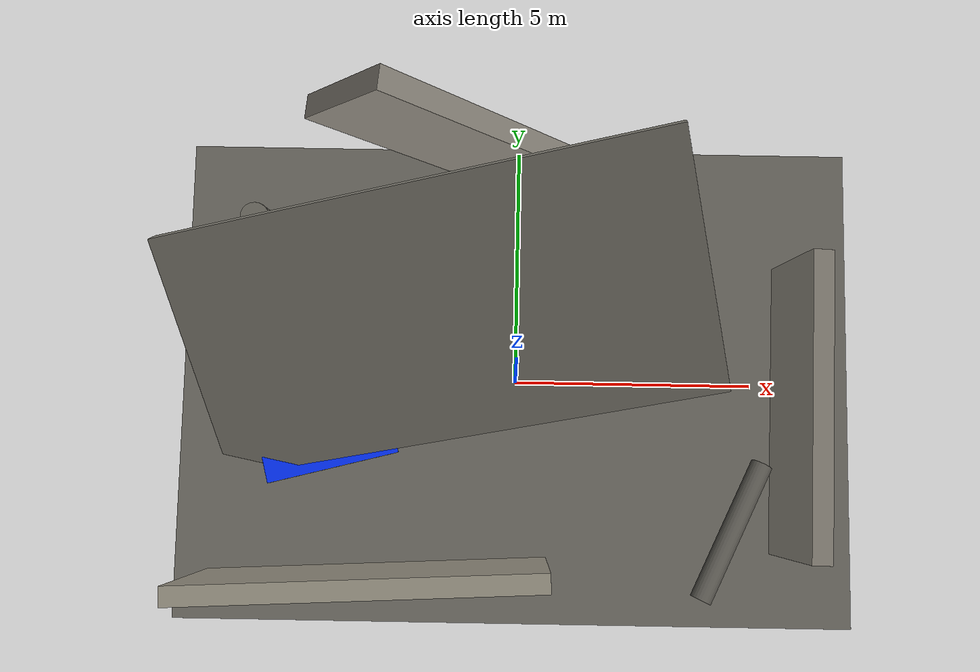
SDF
<sdf version='1.9'>
  <model name='disaster_collapsed_building'>
    <static>true</static>

    <link name='foundation_slab'>
      <pose>0 0 0.12 0 0 0</pose>
      <collision name='collision'>
        <geometry><box><size>14 10 0.24</size></box></geometry>
      </collision>
      <visual name='visual'>
        <geometry><box><size>14 10 0.24</size></box></geometry>
        <material>
          <ambient>0.23 0.23 0.22 1</ambient>
          <diffuse>0.43 0.42 0.39 1</diffuse>
        </material>
      </visual>
    </link>

    <link name='tilted_roof_slab'>
      <pose>-1.5 1.2 1.85 0.42 -0.18 0.18</pose>
      <collision name='collision'>
        <geometry><box><size>10.5 5.2 0.35</size></box></geometry>
      </collision>
      <visual name='visual'>
        <geometry><box><size>10.5 5.2 0.35</size></box></geometry>
        <material>
          <ambient>0.26 0.25 0.24 1</ambient>
          <diffuse>0.50 0.49 0.45 1</diffuse>
        </material>
      </visual>
    </link>

    <link name='fallen_wall_north'>
      <pose>1.0 4.2 0.78 0.0 0.72 -0.10</pose>
      <collision name='collision'>
        <geometry><box><size>11.0 0.45 2.4</size></box></geometry>
      </collision>
      <visual name='visual'>
        <geometry><box><size>11.0 0.45 2.4</size></box></geometry>
        <material>
          <ambient>0.30 0.29 0.27 1</ambient>
          <diffuse>0.56 0.54 0.50 1</diffuse>
        </material>
      </visual>
    </link>

    <link name='standing_wall_south'>
      <pose>-2.8 -4.0 1.5 0.0 0.0 0.05</pose>
      <collision name='collision'>
        <geometry><box><size>7.0 0.38 3.0</size></box></geometry>
      </collision>
      <visual name='visual'>
        <geometry><box><size>7.0 0.38 3.0</size></box></geometry>
        <material>
          <ambient>0.32 0.31 0.29 1</ambient>
          <diffuse>0.60 0.58 0.52 1</diffuse>
        </material>
      </visual>
    </link>

    <link name='broken_wall_east'>
      <pose>5.7 -0.5 1.15 0.12 0.0 1.55</pose>
      <collision name='collision'>
        <geometry><box><size>6.0 0.42 2.3</size></box></geometry>
      </collision>
      <visual name='visual'>
        <geometry><box><size>6.0 0.42 2.3</size></box></geometry>
        <material>
          <ambient>0.27 0.27 0.25 1</ambient>
          <diffuse>0.52 0.50 0.46 1</diffuse>
        </material>
      </visual>
    </link>

    <link name='column_01'>
      <pose>-5.2 3.1 1.05 0.10 0.05 0</pose>
      <collision name='collision'>
        <geometry><cylinder><radius>0.28</radius><length>2.1</length></cylinder></geometry>
      </collision>
      <visual name='visual'>
        <geometry><cylinder><radius>0.28</radius><length>2.1</length></cylinder></geometry>
        <material><diffuse>0.45 0.44 0.40 1</diffuse></material>
      </visual>
    </link>

    <link name='column_02'>
      <pose>3.2 2.7 0.85 1.35 0.0 0.35</pose>
      <collision name='collision'>
        <geometry><cylinder><radius>0.24</radius><length>3.3</length></cylinder></geometry>
      </collision>
      <visual name='visual'>
        <geometry><cylinder><radius>0.24</radius><length>3.3</length></cylinder></geometry>
        <material><diffuse>0.43 0.42 0.38 1</diffuse></material>
      </visual>
    </link>

    <link name='column_03'>
      <pose>4.4 -3.0 0.9 1.52 0.12 -0.45</pose>
      <collision name='collision'>
        <geometry><cylinder><radius>0.22</radius><length>3.0</length></cylinder></geometry>
      </collision>
      <visual name='visual'>
        <geometry><cylinder><radius>0.22</radius><length>3.0</length></cylinder></geometry>
        <material><diffuse>0.40 0.39 0.36 1</diffuse></material>
      </visual>
    </link>

    <link name='rescue_tarp'>
      <pose>-4.0 -1.0 0.28 0 0 0.25</pose>
      <visual name='visual'>
        <geometry><box><size>2.8 1.8 0.04</size></box></geometry>
        <material>
          <ambient>0.02 0.12 0.85 1</ambient>
          <diffuse>0.02 0.20 1.0 1</diffuse>
        </material>
      </visual>
    </link>
  </model>
</sdf>
